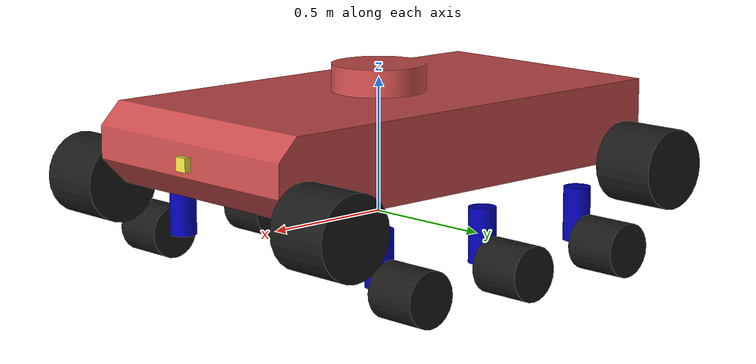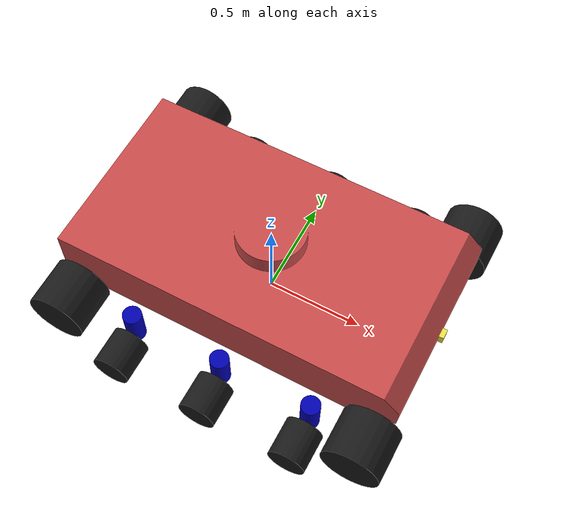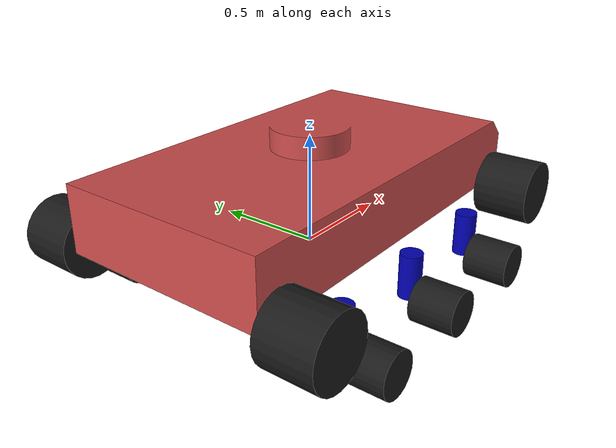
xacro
<?xml version="1.0"?>
<robot name="trackbot_vehicle" xmlns:xacro="http://ros.org/wiki/xacro">
  <xacro:include filename="wheel.xacro" />
  <xacro:include filename="bogie.xacro" />
  <xacro:include filename="../trackbot_sensors/sensors.xacro" />
  <xacro:include filename="$(find trackbot_gazebo)/urdf/common_properties.urdf"/>

  <xacro:arg name="use_gazebo" default="false"/>

  <!-- Properties for main body -->
  <xacro:property name="body_length" value="1.8"/>
  <xacro:property name="body_width" value="0.96"/>
  <xacro:property name="body_height" value="0.3"/>
  <xacro:property name="body_mass" value="100.0"/>

  <!-- Properties for drive wheel -->
  <xacro:property name="drive_whl_d" value="0.3"/>
  <xacro:property name="drive_whl_w" value="0.25"/>
  <xacro:property name="drive_whl_mass" value="10.0"/>
  <xacro:property name="drive_whl_front_x" value="0.8"/>
  <xacro:property name="drive_whl_rear_x" value="-0.8"/>
  <xacro:property name="drive_whl_offset_y" value="${body_width/2+drive_whl_w/2+0.01}"/>
  <xacro:property name="drive_whl_offset_z" value="0.15"/>

  <!-- Properties for bogies -->
  <xacro:property name="bogie_whl_d" value="0.2"/>
  <xacro:property name="bogie_whl_w" value="0.2"/>
  <xacro:property name="bogie_whl_mass" value="5.0"/>
  <xacro:property name="bogie_susp_d" value="0.1"/>
  <xacro:property name="bogie_susp_l" value="0.2"/>
  <xacro:property name="bogie_1_x" value="0.5"/>  <!-- position x for bogie wheels 1, 2, 3 -->
  <xacro:property name="bogie_2_x" value="0.0"/>
  <xacro:property name="bogie_3_x" value="-0.5"/>
  <xacro:property name="bogie_y" value="${body_width/2+bogie_susp_d/2}"/>  <!-- Bogie offset in Y axis-->
  <xacro:property name="bogie_z" value="0.0"/>
  <xacro:property name="bogie_whl_left_y" value="${bogie_susp_d/2 + bogie_whl_w/2}"/>
  <xacro:property name="bogie_whl_right_y" value="${-bogie_susp_d/2 - bogie_whl_w/2}"/>
  <xacro:property name="bogie_susp_mass" value="1.0"/>
  <xacro:property name="bogie_spring_coeff" value="1000"/>
  <xacro:property name="bogie_damping_coeff" value="0.01"/>

  <!-- Properties for sensors -->
  <xacro:property name="camera_front_xyz" value="0.9 0 0.3"/>
  <xacro:property name="camera_front_rpy" value="0 0 0"/>

  <xacro:property name="lidar_front_xyz" value="0.9 0 0.4"/>
  <xacro:property name="lidar_front_rpy" value="0 0 0"/>

    <!-- Dummy root link with no inertia -->
    <link name="root"/>

    <!-- ****************** ROBOT BASE FOOTPRINT ***************************  -->
    <link name="base_footprint"/>

    <!-- Base Link -->
    <link name="base_link">
      <inertial>
        <mass value="${body_mass}"/>
        <inertia ixx="${body_mass/12*(body_width*body_width+body_height*body_height)}" ixy="0.0" ixz="0.0"
                iyy="${body_mass/12*(body_length*body_length+body_height*body_height)}" iyz="0.0"
                izz="${body_mass/12*(body_length*body_length+body_width*body_width)}"/>
      </inertial>

      <collision name="base_collision">
        <origin xyz="0 0 0.15" rpy="0 0 0"/>
        <geometry>
          <box size="${body_length} ${body_width} ${body_height}"/>
        </geometry>
      </collision>

      <visual name="base_visual">
        <origin xyz="0 0 0.15" rpy="0 0 0"/>
        <geometry>
          <!-- Use model:// with the *model name* that has model.config -->
          <mesh filename="package://trackbot_vehicle/meshes/robot_base.stl"
                scale="0.001 0.001 0.001"/>
        </geometry>
        <material name="light_red">
        </material>
        <cast_shadows>true</cast_shadows>
      </visual>
    </link>

    <!-- ************************ JOINTS ***********************************  -->
    <!-- Your original root becomes a child -->
    <joint name="root_to_base" type="fixed">
      <parent link="root"/>
      <child link="base_footprint"/>
    </joint>

    <joint name="base_joint" type="fixed">
      <origin xyz="0 0 0" rpy="0 0 0"/>
      <parent link="base_footprint"/>
      <child link="base_link"/>
    </joint>
    <gazebo>
      <plugin name="gz::sim::systems::Sensors"
          filename="gz-sim-sensors-system">
      </plugin>
      <plugin
        filename="gz-sim-imu-system"
        name="gz::sim::systems::Imu">
      </plugin>
    </gazebo>

    <!-- Instantiate sensors -->
    <xacro:camera_sensor sensor_name="front_camera" parent_link="base_link" xyz="${camera_front_xyz}" rpy="${camera_front_rpy}"/>
    <xacro:imu_sensor sensor_name="inertial_unit" parent_link="base_link"/>

    <!-- Instantiate four drive wheels -->
    <xacro:drive_wheel name="drivewhl_left_f" wheel_diameter="${drive_whl_d}" wheel_length="${drive_whl_w}" wheel_mass="${drive_whl_mass}"
        x="${drive_whl_front_x}" y="${drive_whl_offset_y}" z="${drive_whl_offset_z}"/>
    <xacro:drive_wheel name="drivewhl_right_f" wheel_diameter="${drive_whl_d}" wheel_length="${drive_whl_w}" wheel_mass="${drive_whl_mass}"
        x="${drive_whl_front_x}" y="-${drive_whl_offset_y}" z="${drive_whl_offset_z}"/>
    <xacro:drive_wheel name="drivewhl_left_r" wheel_diameter="${drive_whl_d}" wheel_length="${drive_whl_w}" wheel_mass="${drive_whl_mass}"
        x="${drive_whl_rear_x}" y="${drive_whl_offset_y}" z="${drive_whl_offset_z}"/>
    <xacro:drive_wheel name="drivewhl_right_r" wheel_diameter="${drive_whl_d}" wheel_length="${drive_whl_w}" wheel_mass="${drive_whl_mass}"
        x="${drive_whl_rear_x}" y="-${drive_whl_offset_y}" z="${drive_whl_offset_z}"/>

    <!-- Instantiate bogie wheels -->
    <xacro:bogie_wheel name="bogie_left_1" parent_link="base_link"
        x="${bogie_1_x}" y="${bogie_y}" z="${bogie_z}" y_wheel="${bogie_whl_left_y}"
        wheel_diameter="${bogie_whl_d}" wheel_length="${bogie_whl_w}" wheel_mass="${bogie_whl_mass}"
        susp_diameter="${bogie_susp_d}" susp_length="${bogie_susp_l}" susp_mass="${bogie_susp_mass}"
        spring_coeff="${bogie_spring_coeff}" damping_coeff="${bogie_damping_coeff}"/>

    <xacro:bogie_wheel name="bogie_left_2" parent_link="base_link"
        x="${bogie_2_x}" y="${bogie_y}" z="${bogie_z}" y_wheel="${bogie_whl_left_y}"
        wheel_diameter="${bogie_whl_d}" wheel_length="${bogie_whl_w}" wheel_mass="${bogie_whl_mass}"
        susp_diameter="${bogie_susp_d}" susp_length="${bogie_susp_l}" susp_mass="${bogie_susp_mass}"
        spring_coeff="${bogie_spring_coeff}" damping_coeff="${bogie_damping_coeff}"/>

    <xacro:bogie_wheel name="bogie_left_3" parent_link="base_link"
        x="${bogie_3_x}" y="${bogie_y}" z="${bogie_z}" y_wheel="${bogie_whl_left_y}"
        wheel_diameter="${bogie_whl_d}"  wheel_length="${bogie_whl_w}" wheel_mass="${bogie_whl_mass}"
        susp_diameter="${bogie_susp_d}" susp_length="${bogie_susp_l}" susp_mass="${bogie_susp_mass}"
        spring_coeff="${bogie_spring_coeff}" damping_coeff="${bogie_damping_coeff}"/>

    <xacro:bogie_wheel name="bogie_right_1" parent_link="base_link"
        x="${bogie_1_x}" y="${-bogie_y}" z="${bogie_z}" y_wheel="${bogie_whl_right_y}"
        wheel_diameter="${bogie_whl_d}" wheel_length="${bogie_whl_w}" wheel_mass="${bogie_whl_mass}"
        susp_diameter="${bogie_susp_d}" susp_length="${bogie_susp_l}" susp_mass="${bogie_susp_mass}"
        spring_coeff="${bogie_spring_coeff}" damping_coeff="${bogie_damping_coeff}"/>

    <xacro:bogie_wheel name="bogie_right_2" parent_link="base_link"
        x="${bogie_2_x}" y="${-bogie_y}" z="${bogie_z}" y_wheel="${bogie_whl_right_y}"
        wheel_diameter="${bogie_whl_d}" wheel_length="${bogie_whl_w}" wheel_mass="${bogie_whl_mass}"
        susp_diameter="${bogie_susp_d}" susp_length="${bogie_susp_l}" susp_mass="${bogie_susp_mass}"
        spring_coeff="${bogie_spring_coeff}" damping_coeff="${bogie_damping_coeff}"/>

    <xacro:bogie_wheel name="bogie_right_3" parent_link="base_link"
        x="${bogie_3_x}" y="${-bogie_y}" z="${bogie_z}" y_wheel="${bogie_whl_right_y}"
        wheel_diameter="${bogie_whl_d}" wheel_length="${bogie_whl_w}" wheel_mass="${bogie_whl_mass}"
        susp_diameter="${bogie_susp_d}" susp_length="${bogie_susp_l}" susp_mass="${bogie_susp_mass}"
        spring_coeff="${bogie_spring_coeff}" damping_coeff="${bogie_damping_coeff}"/>

    <!-- Plugin to use ROS2 DiffDrive -->
    <gazebo>
      <plugin filename="gz-sim-diff-drive-system" name="gz::sim::systems::DiffDrive">

        <left_joint>bogie_left_1_wheel_joint</left_joint>
        <left_joint>bogie_left_2_wheel_joint</left_joint>
        <left_joint>bogie_left_3_wheel_joint</left_joint>
        <right_joint>bogie_right_1_wheel_joint</right_joint>
        <right_joint>bogie_right_2_wheel_joint</right_joint>
        <right_joint>bogie_right_3_wheel_joint</right_joint>

        <!-- kinematics -->
        <wheel_separation>${2 * drive_whl_offset_y}</wheel_separation>
        <wheel_radius>${drive_whl_d}/2</wheel_radius>

        <!-- limits -->
        <max_linear_acceleration>1.0</max_linear_acceleration>

        <topic>cmd_vel</topic>
        <odom_topic>odom</odom_topic>
        <frame_id>odom</frame_id>
        <tf_topic>/tf</tf_topic>
        <odom_publisher_frequency>30</odom_publisher_frequency>
        <child_frame_id>base_footprint</child_frame_id>
        <ros>
            <namespace>/</namespace>        <!-- put ROS topics at root -->
            <remapping>cmd_vel:=cmd_vel</remapping>
            <remapping>odom:=odom</remapping>
        </ros>
      </plugin>
    </gazebo>

    <!-- Plugin to publish joint states and broadcast TF -->
    <gazebo>
      <plugin filename="gz-sim-joint-state-publisher-system" name="gz::sim::systems::JointStatePublisher">
        <topic>joint_states</topic>
        <publish_frequency>50</publish_frequency>
        <update_rate>30</update_rate>
        <joint_name>drivewhl_left_f_joint</joint_name>
        <joint_name>drivewhl_right_f_joint</joint_name>
        <joint_name>drivewhl_left_r_joint</joint_name>
        <joint_name>drivewhl_right_r_joint</joint_name>
        <joint_name>bogie_left_1_suspension_joint</joint_name>
        <joint_name>bogie_left_2_suspension_joint</joint_name>
        <joint_name>bogie_left_3_suspension_joint</joint_name>
        <joint_name>bogie_right_1_suspension_joint</joint_name>
        <joint_name>bogie_right_2_suspension_joint</joint_name>
        <joint_name>bogie_right_3_suspension_joint</joint_name>
        <joint_name>bogie_left_1_wheel_joint</joint_name>
        <joint_name>bogie_left_2_wheel_joint</joint_name>
        <joint_name>bogie_left_3_wheel_joint</joint_name>
        <joint_name>bogie_right_1_wheel_joint</joint_name>
        <joint_name>bogie_right_2_wheel_joint</joint_name>
        <joint_name>bogie_right_3_wheel_joint</joint_name>
      </plugin>
    </gazebo>

</robot>

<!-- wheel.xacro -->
<robot xmlns:xacro="http://ros.org/wiki/xacro">

    <!-- Macro for a wheel -->
    <xacro:macro name="drive_wheel" params="
        name
        wheel_diameter:='0.5'
        wheel_length:='0.1'
        wheel_mass:='1.0'
        x:='0'
        y:='0'
        z:='0'
        ">
    <xacro:property name="wheel_r" value="${wheel_diameter/2}"/>
    <xacro:property name="wheel_w" value="${wheel_length}"/>

    <xacro:property name="wheel_ixx" value="${1.0/12.0 * wheel_mass * (3 * wheel_r * wheel_r + wheel_w * wheel_w)}"/>
    <xacro:property name="wheel_iyy" value="${0.5 * wheel_mass * wheel_r * wheel_r}"/>
    <xacro:property name="wheel_izz" value="${wheel_ixx}"/>

    <link name="${name}_link">
      <inertial>
        <mass value="${wheel_mass}"/>
        <inertia ixx="${wheel_ixx}" ixy="0.0" ixz="0.0"
                iyy="${wheel_iyy}" iyz="0.0"
                izz="${wheel_izz}"/>
      </inertial>

      <collision name="${name}_collision">
        <origin xyz="${x} ${y} ${z}" rpy="1.5708 0 0"/> <!-- Rotate cylinder to face +Y -->
        <geometry>
          <cylinder radius="${wheel_r}" length="${wheel_w}"/>
        </geometry>
      </collision>

      <visual name="${name}_visual">
        <origin xy="${x} ${y} ${z}" rpy="1.5708 0 0"/> <!-- Rotate cylinder to face +Y -->
        <geometry>
          <cylinder radius="${wheel_r}" length="${wheel_w}"/>
        </geometry>
        <material name="dark">
          <ambient>0 0 1 1</ambient>
          <diffuse>0 0 1 1</diffuse>
        </material>
      </visual>
    </link>

    <joint name="${name}_joint" type="continuous">
      <origin xyz="${x} ${y} ${z}" rpy="0 0 0"/>
      <parent link="base_link"/>
      <child link="${name}_link"/>
      <axis xyz="0 1 0"/>
    </joint>
  </xacro:macro>

</robot>

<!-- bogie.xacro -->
<robot xmlns:xacro="http://ros.org/wiki/xacro">

    <!-- Macro for a wheel -->
    <xacro:macro name="bogie_wheel" params="
          name
          parent_link
          x:='0'
          y:='0'
          z:='0'
          y_wheel:='0'
          wheel_diameter:='0.3'
          wheel_length:='0.05'
          wheel_mass:='2.5'
          susp_diameter:='0.1'
          susp_length:='0.2'
          susp_mass:='1.0'
          spring_coeff:='4000'
          damping_coeff:='15'
          ">

      <!-- Computed Parameters         -->
      <!-- wheel -->
      <xacro:property name="wheel_r" value="${wheel_diameter / 2.0}"/>
      <xacro:property name="wheel_l" value="${wheel_length}"/>

      <xacro:property name="wheel_ixx" value="${1.0/12.0 * wheel_mass * (3 * wheel_r * wheel_r + wheel_l * wheel_l)}"/>
      <xacro:property name="wheel_iyy" value="${0.5 * wheel_mass * wheel_r * wheel_r}"/>
      <xacro:property name="wheel_izz" value="${wheel_ixx}"/>

      <!-- Suspension property -->
      <xacro:property name="susp_r" value="${susp_diameter/2}"/>
      <xacro:property name="susp_l" value="${susp_length}"/>

      <xacro:property name="susp_ixx" value="${1.0/12.0 * susp_mass * (3 * susp_r * susp_r + susp_l * susp_l)}"/>
      <xacro:property name="susp_iyy" value="${1.0/12.0 * susp_mass * (3 * susp_r * susp_r + susp_l * susp_l)}"/>
      <xacro:property name="susp_izz" value="${1.0/12.0 * susp_mass * (3 * susp_r * susp_r + susp_l * susp_l)}"/>

      <xacro:property name="susp_joint_xyz" value="${x} ${y} ${z+susp_length/2}"/>
      <xacro:property name="wheel_joint_xyz" value="${0} ${y_wheel} ${-susp_length/2}"/>
      <!-- Suspension Link             -->
      <link name="${name}_suspension_link">
        <inertial>
          <mass value="${susp_mass}"/>
          <inertia ixx="${susp_ixx}" ixy="0.0" ixz="0.0"
            iyy="${susp_iyy}" iyz="0.0"
            izz="${susp_izz}"/>
        </inertial>

        <collision name="${name}_suspension_collision">
          <origin xyz="0 0 0" rpy="0 0 0"/> <!-- Rotate cylinder to face +Y -->
          <geometry>
            <cylinder radius="${susp_r}" length="${susp_l}"/>
          </geometry>
        </collision>

        <visual name="${name}_suspension_visual">
          <origin xyz="0 0 0" rpy="0 0 0"/>
          <geometry>
            <cylinder radius="${susp_r}" length="${susp_l}"/>
          </geometry>
          <material name="blue">
            <ambient>0 0 1 1</ambient>
            <diffuse>0 0 1 1</diffuse>
          </material>
        </visual>
      </link>

      <!-- Suspension Joint            -->
      <joint name="${name}_suspension_joint" type="prismatic">
        <origin xyz="${x} ${y} ${z}" rpy="0 0 0"/>
        <parent link="${parent_link}"/>
        <child link="${name}_suspension_link"/>
        <axis xyz="0 0 -1"/> <!-- moves along -Z -->
        <limit lower="-0.1" upper="0.1" effort="500" velocity="10.0"/>
        <!--no springs-->
      </joint>
      <xacro:if value="$(arg use_gazebo)">
        <gazebo reference="${name}_suspension_joint">
          <axis>
            <dynamics>
              <damping>${damping_coeff}</damping>
              <spring_reference>0</spring_reference>
              <spring_stiffness>${spring_coeff}</spring_stiffness>
            </dynamics>
          </axis>
        </gazebo>
      </xacro:if>
      <!-- wheel Link                  -->
      <link name="${name}_wheel_link">
        <inertial>
          <mass value="${wheel_mass}"/>
          <inertia ixx="${wheel_ixx}" ixy="0.0" ixz="0.0"
            iyy="${wheel_iyy}" iyz="0.0"
            izz="${wheel_izz}"/>
        </inertial>

        <collision name="${name}_wheel_collision">
          <origin xyz="0 0 0" rpy="1.5708 0 0"/><!-- only rotate the cylinder -->
          <geometry>
            <cylinder radius="${wheel_r}" length="${wheel_l}"/>
          </geometry>
        </collision>

        <visual name="${name}_wheel_visual">
          <origin xyz="0 0 0" rpy="1.5708 0 0"/>
          <geometry>
            <cylinder radius="${wheel_r}" length="${wheel_l}"/>
          </geometry>
          <material name="dark">
            <ambient>0 0 1 1</ambient>
            <diffuse>0 0 1 1</diffuse>
          </material>
        </visual>
      </link>

      <!-- wheel Revolute Joint        -->
      <joint name="${name}_wheel_joint" type="continuous">
        <origin xyz="${wheel_joint_xyz}" rpy="0 0 0"/> <!-- the *only* translation -->
        <parent link="${name}_suspension_link"/>
        <child link="${name}_wheel_link"/>
        <axis xyz="0 1 0"/>
      </joint>
    </xacro:macro>
</robot>

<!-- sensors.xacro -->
<robot xmlns:xacro="http://ros.org/wiki/xacro">

  <!-- Camera -->
  <xacro:macro name="camera_sensor" params="sensor_name parent_link xyz:='0 0 0' rpy:='0 0 0'">
    <link name="${sensor_name}_link">
      <visual name="${sensor_name}_visual">
        <geometry><box size="0.05 0.05 0.05"/></geometry>
      </visual>
      <inertial>
        <mass value="0.1"/>
        <inertia ixx="1e-5" ixy="0" ixz="0" iyy="1e-5" iyz="0" izz="1e-5"/>
      </inertial>
    </link>

    <joint name="${sensor_name}_joint" type="fixed">
      <parent link="${parent_link}"/>
      <child  link="${sensor_name}_link"/>
      <origin xyz="${xyz}" rpy="${rpy}"/>
    </joint>

    <!-- SDF sensor lives under a gazebo block, referenced to the link -->
    <gazebo reference="${sensor_name}_link">
      <sensor name="${sensor_name}" type="camera">
        <always_on>true</always_on>
        <update_rate>30</update_rate>
        <visualize>true</visualize>

        <topic>/camera/image_raw</topic>
        <gz_frame_id>${sensor_name}_link</gz_frame_id>

        <camera>
          <camera_info_topic>/camera/camera_info</camera_info_topic>
          <horizontal_fov>1.047</horizontal_fov>
          <image>
            <width>640</width><height>480</height><format>R8G8B8</format>
          </image>
          <clip><near>0.1</near><far>100</far></clip>
        </camera>
      </sensor>
    </gazebo>
  </xacro:macro>

  <!-- IMU -->
  <xacro:macro name="imu_sensor" params="sensor_name parent_link xyz:='0 0 0.2' rpy:='0 0 0'">
    <link name="${sensor_name}_link">
      <visual name="${sensor_name}_visual">
        <geometry><box size="0.03 0.03 0.03"/></geometry>
      </visual>
      <inertial>
        <mass value="0.05"/>
        <inertia ixx="1e-5" ixy="0" ixz="0" iyy="1e-5" iyz="0" izz="1e-5"/>
      </inertial>
    </link>

    <joint name="${sensor_name}_joint" type="fixed">
      <parent link="${parent_link}"/>
      <child  link="${sensor_name}_link"/>
      <origin xyz="${xyz}" rpy="${rpy}"/>
    </joint>

    <gazebo reference="${sensor_name}_link">
      <sensor name="${sensor_name}" type="imu">
        <always_on>true</always_on>
        <update_rate>100</update_rate>
        <visualize>true</visualize>
        <topic>/imu/data</topic>
        <gz_frame_id>${sensor_name}_link</gz_frame_id>
      </sensor>
    </gazebo>
  </xacro:macro>

</robot>

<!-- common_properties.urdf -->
<robot name="xacro_properties"
  xmlns:xacro="http://ros.org/wiki/xacro">

  <!-- Init colour -->
  <material name="black">
    <color rgba="0.0 0.0 0.0 1.0"/>
  </material>

  <material name="dark">
    <color rgba="0.1 0.1 0.1 1.0"/>
  </material>
  <material name="light_black">
    <color rgba="0.2 0.2 0.2 1.0"/>
  </material>

  <material name="blue">
    <color rgba="0.0 0.0 0.7 1.0"/>
  </material>

  <material name="green">
    <color rgba="0.0 0.8 0.0 1.0"/>
  </material>

  <material name="grey">
    <color rgba="0.3 0.3 0.3 1.0"/>
  </material>

  <material name="orange">
    <color rgba="${255/255} ${108/255} ${10/255} 1.0"/>
  </material>

  <material name="brown">
    <color rgba="${222/255} ${207/255} ${195/255} 1.0"/>
  </material>

  <material name="red">
    <color rgba="0.8 0.0 0.0 1.0"/>
  </material>

  <material name="light_red">
    <color rgba="0.8 0.3 0.3 1.0"/>
  </material>

  <material name="white">
    <color rgba="1.0 1.0 1.0 1.0"/>
  </material>
</robot>
